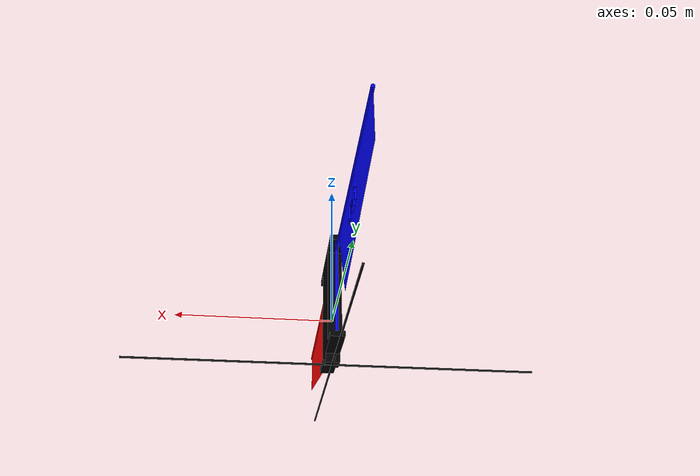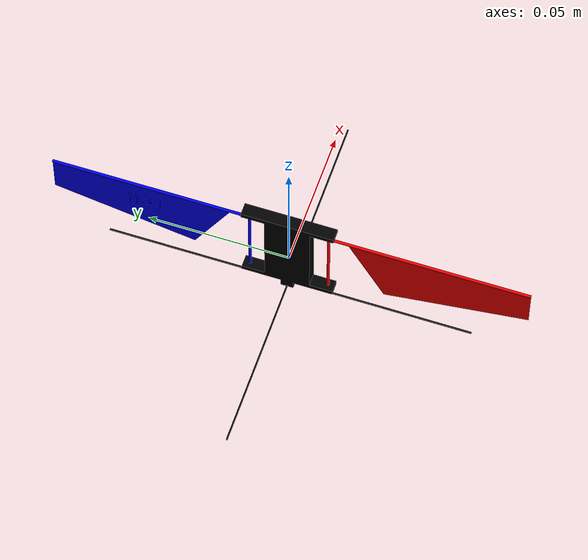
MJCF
<mujoco model="flapper_sc">
  <compiler angle="radian" meshdir="flappy/flappy/urdf/fwmav/meshes/"/>

  <option timestep="0.001" gravity="0 0 -9.81"/>

  <visual>
    <global offwidth="800" offheight="600"/>
    <rgba haze="0.15 0.25 0.35 1"/>  <!-- Background color (RGB + alpha) -->

  </visual>

  <asset>
    <!-- Light gray floor material name="floor_mat" rgba="0.6 0.6 0.6 1"-->

    <texture name="grid" type="2d" builtin="checker" width="512" height="512" rgb1=".1 .2 .3" rgb2=".2 .3 .4"/>
    <material name="floor_mat" texture="grid" texrepeat="1 1" texuniform="true" reflectance=".2"/>
    <!-- Torso -->
    <mesh name="torso_mesh" file="torso_small_base.STL"/>
    <!-- Left Wing -->
    <mesh name="left_wing_mesh" file="Wing_Camber_70mm_C35mm_no_trailing_L.STL"/>
    <mesh name="left_LE_mesh" file="left_LE.STL"/>
    <!-- Right Wing -->
    <mesh name="right_wing_mesh" file="right_wing.STL"/>
    <mesh name="right_LE_mesh" file="right_LE.STL"/>
  </asset>

  <worldbody>
    <!-- Add lights conaffinity="0" contype="0"-->
    <light name="top_light" directional="true" diffuse="0.8 0.8 0.8" pos="0 0 0.5" dir="0 0 -1"/>
    <light name="spotlight" mode="targetbodycom" target="torso" diffuse=".8 .8 .8" specular="0.3 0.3 0.3" pos="0 -0.3 0.2" cutoff="30"/>
    <light name="side_light" directional="true" diffuse="0.8 0.8 0.8" pos="1 1 1" dir="-1 -1 -1" />
    <geom name="floor" size="0 0 .05" type="plane" material="floor_mat"
          pos="0 0 -1.0"/>
    <!-- Add a tracking camera -->
    <camera name="fixed" mode="fixed" pos="0.1 -0.3 0.05" xyaxes="1 0 0 0 0 1"/>

    <!-- Torso (main body) -->
    <body name="torso" pos="0 0 0">
      <freejoint name="torso_to_world"/>  <!-- Replaces URDF's floating joint -->
      <inertial pos="0.1797E-3 0.0008E-3 -1.3998E-3" mass="10.9067E-3"
                diaginertia="4238.1285E-9 3970.1646E-9 2440.9505E-9"/> <!-- Diagonal terms only -->
      <geom type="mesh" mesh="torso_mesh" rgba="0 0 0 1" />

      <!-- Left Wing Assembly -->
      <body name="left_leading_edge" pos="0 0.01395 0.0189913">
        <joint name="left_stroke" type="hinge" axis="0 0 1" limited="true" range="-1.63 1.63"
               damping="8E-9" frictionloss="1E-9"/>
        <inertial pos="-0.2837E-3 3.3023E-3 -6.3984E-3" mass="0.7081E-3"
                  diaginertia="132.8411E-9 47.7258E-9 90.6904E-9"/> <!-- Simplified -->
        <geom type="mesh" mesh="left_LE_mesh" rgba="0 0 1 1"/>

        <!-- Left Wing -->
        <body name="left_wing">
          <joint name="left_rotate" type="hinge" axis="0 1 0" limited="true" range="-0.7854 0.7854"
                 damping="1E-9" frictionloss="1E-8"/>
          <inertial pos="0.0024E-3 37.3242E-3 -9.8917E-3" mass="0.0626E-3"
                    diaginertia="21.4402E-9 2.2204E-9 19.2209E-9"/> <!-- Simplified -->
          <geom type="mesh" mesh="left_wing_mesh" rgba="0 0 1 1"/>
        </body>
      </body>

      <!-- Right Wing Assembly (mirror of left) -->
      <body name="right_leading_edge" pos="0 -0.01395 0.0189913">
        <joint name="right_stroke" type="hinge" axis="0 0 -1" limited="true" range="-1.63 1.63"
               damping="8E-9" frictionloss="1E-9"/>
        <inertial pos="-0.2837E-3 -3.3023E-3 -6.3984E-3" mass="0.7081E-3"
                  diaginertia="132.8411E-9 47.7258E-9 90.6904E-9"/> <!-- Simplified -->
        <geom type="mesh" mesh="right_LE_mesh" rgba="1 0 0 1"/>

        <!-- Right Wing -->
        <body name="right_wing">
          <joint name="right_rotate" type="hinge" axis="0 1 0" limited="true" range="-0.7854 0.7854"
                 damping="1E-9" frictionloss="1E-8"/>
          <inertial pos="-0.0024E-3 -37.3242E-3 -9.8917E-3" mass="0.0626E-3"
                    diaginertia="21.4402E-9 2.2204E-9 19.2209E-9"/> <!-- Simplified -->
          <geom type="mesh" mesh="right_wing_mesh" rgba="1 0 0 1"/>
        </body>
      </body>
    </body>
  </worldbody>

  <!-- Actuators (if needed later) -->
  <actuator>
    <motor name="left_motor" joint="left_stroke" gear="1"/>
    <motor joint="left_rotate" gear="1"/>
    <motor name="right_motor" joint="right_stroke" gear="1"/>
    <motor joint="right_rotate" gear="1"/>
  </actuator>
</mujoco>
